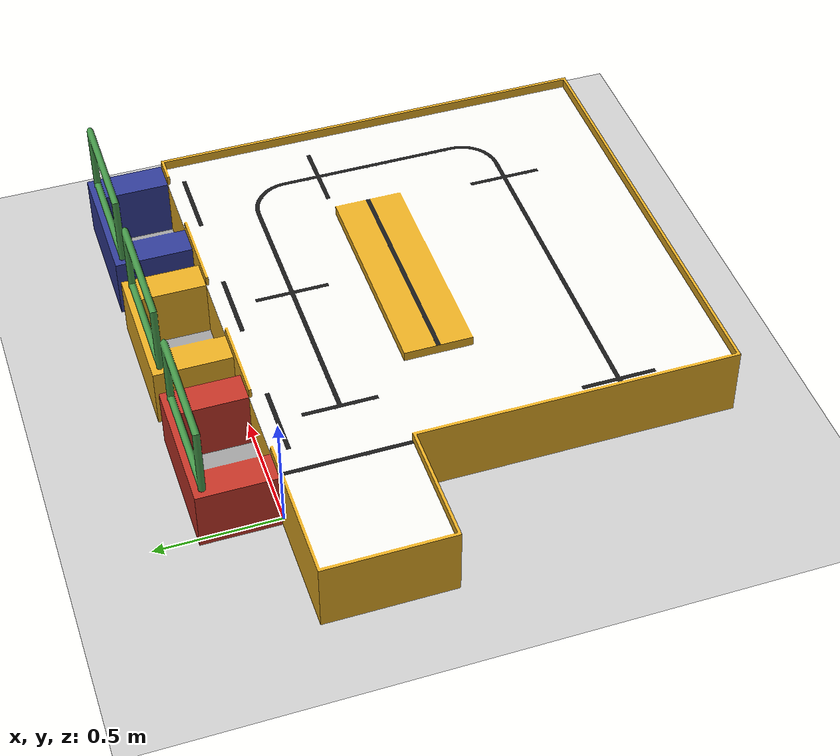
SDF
<?xml version="1.0" ?>
<sdf version="1.10">
    <world name="irc_table">
        <physics name="1ms" type="ignored">
            <max_step_size>0.001</max_step_size>
            <real_time_factor>1.0</real_time_factor>
        </physics>
        <plugin
            filename="gz-sim-physics-system"
            name="gz::sim::systems::Physics">
        </plugin>
        <plugin
            filename="gz-sim-user-commands-system"
            name="gz::sim::systems::UserCommands">
        </plugin>
        <plugin
            filename="gz-sim-scene-broadcaster-system"
            name="gz::sim::systems::SceneBroadcaster">
        </plugin>

        <light type="directional" name="sun">
            <cast_shadows>true</cast_shadows>
            <pose>0 0 10 0 0 0</pose>
            <diffuse>0.8 0.8 0.8 1</diffuse>
            <specular>0.2 0.2 0.2 1</specular>
            <attenuation>
                <range>1000</range>
                <constant>0.9</constant>
                <linear>0.01</linear>
                <quadratic>0.001</quadratic>
            </attenuation>
            <direction>-0.5 0.1 -0.9</direction>
        </light>

        <model name="ground_plane">
            <static>true</static>
            <link name="link">
                <collision name="collision">
                <geometry>
                    <plane>
                    <normal>0 0 1</normal>
                    </plane>
                </geometry>
                </collision>
                <visual name="visual">
                <geometry>
                    <plane>
                    <normal>0 0 1</normal>
                    <size>100 100</size>
                    </plane>
                </geometry>
                <material>
                    <ambient>0.8 0.8 0.8 1</ambient>
                    <diffuse>0.8 0.8 0.8 1</diffuse>
                    <specular>0.8 0.8 0.8 1</specular>
                </material>
                </visual>
            </link>
        </model>

        <model name="Intelligent_Robot_Contest_world">
          <static>1</static>
          <include>
            <uri>
            model://irc_table
            </uri>
          </include>
        </model>
    </world>
</sdf>

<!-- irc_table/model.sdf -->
<sdf version="1.6">
  <model name="measurement">
    <static>true</static>
    <link name="link">
      <collision name="collision">
        <geometry>
          <mesh>
            <scale>1 1 1</scale>
            <uri>model://irc_table/meshes/irc_table.stl</uri>
          </mesh>
        </geometry>
        <surface>
          <friction>
            <ode>
              <mu>1.2</mu>
              <mu2>1.2</mu2>
            </ode>
          </friction>
        </surface>
      </collision>
      <visual name="visual">
        <geometry>
          <mesh>
            <scale>1 1 1</scale>
            <uri>model://irc_table/meshes/irc_table.dae</uri>
          </mesh>
        </geometry>
      </visual>
    </link>
  </model>
</sdf>
